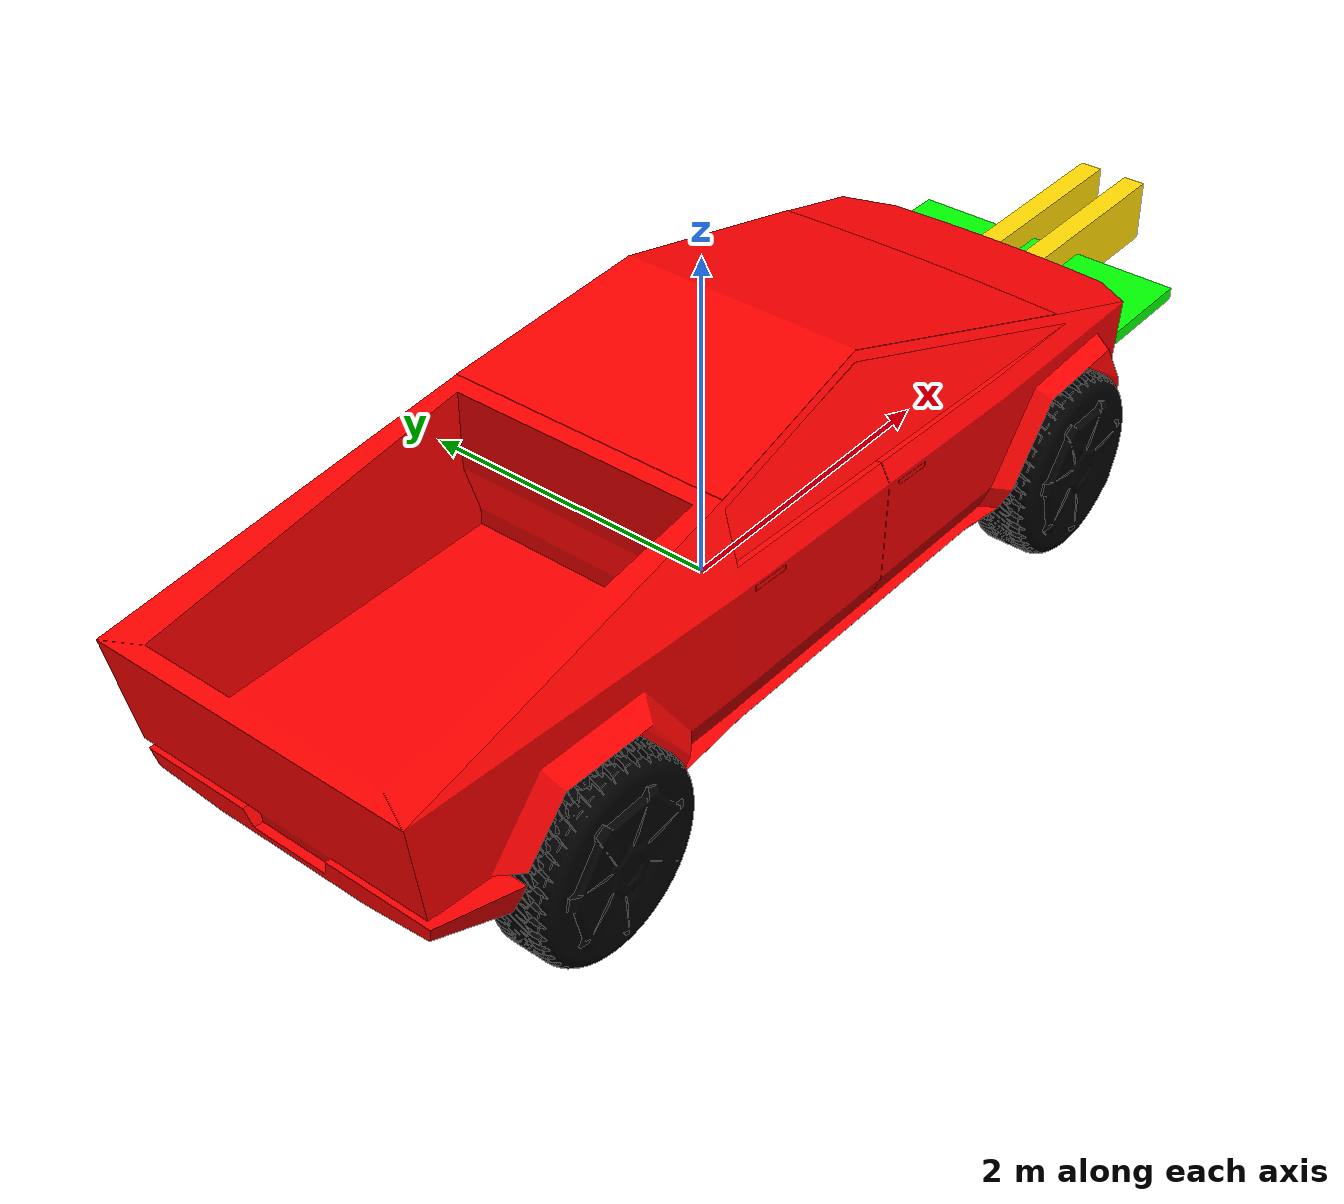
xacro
<?xml version="1.0"?>
<robot name="robot" xmlns:xacro="http://ros.org/wiki/xacro">

  <!-- Overall forklift scale (meshes, wheels, nose). Gripper Z stays at box height. -->
  <xacro:property name="S" value="1.35"/>
  <xacro:property name="WR" value="${0.4175 * S}"/>

   <link name="body">
    <inertial>
      <!-- Heavy enough not to yeet; light enough to accelerate -->
      <mass value="90"/>
      <inertia ixx="35" ixy="0" ixz="0" iyy="70" iyz="0" izz="80" />
    </inertial>
    <visual>
      <origin xyz="0 0 0" rpy="0 0 0" />
      <geometry>
        <mesh filename="file://$(find TeleARM)/meshes/body.STL" scale="${S} ${S} ${S}"/>
      </geometry>
      <material name="red">
        <color rgba="1 0 0 1"/> <!-- Black color -->
      </material>
    </visual>
  </link>

  <link name="window">
    <inertial>
      <mass value="1"/>
      <inertia ixx=".1" ixy="0" ixz="0" iyy=".1" iyz="0" izz=".1" />
    </inertial>
    <visual>
      <origin xyz="0 0 0" rpy="0 0 0" />
      <geometry>
        <mesh filename="file://$(find TeleARM)/meshes/window.STL" scale="${S} ${S} ${S}"/>
      </geometry>
      <material name="red">
        <color rgba="1 0 0 1"/> <!-- Black color -->
      </material>
    </visual>
  </link>
  <!-- Front Left -->
  <link name="front_left_wheel">
    <inertial>
      <mass value="10"/>
      <inertia ixx="0.6" ixy="0" ixz="0" iyy="0.6" iyz="0" izz="1.0" />
    </inertial>
    <collision>
      <origin xyz="0 0 ${0.16 * S}" rpy="0 0 0"/>
      <geometry>
        <cylinder radius="${WR}" length="${0.16 * S}"/>
      </geometry>
    </collision>
    <visual>
      <origin xyz="0 0 0" rpy="0 0 0" />
      <geometry>
        <mesh filename="file://$(find TeleARM)/meshes/wheel.STL" scale="${S} ${S} ${S}"/>
      </geometry>
      <material name="black">
        <color rgba="0 0 0 1"/> <!-- Black color -->
      </material>
    </visual>
  </link>
  <!-- Front Right -->
  <link name="front_right_wheel">
    <inertial>
      <mass value="10"/>
      <inertia ixx="0.6" ixy="0" ixz="0" iyy="0.6" iyz="0" izz="1.0" />
    </inertial>
    <collision>
      <origin xyz="0 0 ${0.16 * S}" rpy="0 0 0"/>
      <geometry>
        <cylinder radius="${WR}" length="${0.16 * S}"/>
      </geometry>
    </collision>
    <visual>
      <origin xyz="0 0 0" rpy="0 0 0" />
      <geometry>
        <mesh filename="file://$(find TeleARM)/meshes/wheel.STL" scale="${S} ${S} ${S}"/>
      </geometry>
      <material name="black">
        <color rgba="0 0 0 1"/> <!-- Black color -->
      </material>
    </visual>
  </link>
  <!-- Back Left -->
  <link name="back_left_wheel">
    <inertial>
      <mass value="10"/>
      <inertia ixx="0.6" ixy="0" ixz="0" iyy="0.6" iyz="0" izz="1.0" />
    </inertial>
    <collision>
      <origin xyz="0 0 ${0.16 * S}" rpy="0 0 0"/>
      <geometry>
        <cylinder radius="${WR}" length="${0.16 * S}"/>
      </geometry>
    </collision>
    <visual>
      <origin xyz="0 0 0" rpy="0 0 0" />
      <geometry>
        <mesh filename="file://$(find TeleARM)/meshes/wheel.STL" scale="${S} ${S} ${S}"/>
      </geometry>
      <material name="black">
        <color rgba="0 0 0 1"/> <!-- Black color -->
      </material>
    </visual>
  </link>
  <!-- Back Right -->
  <link name="back_right_wheel">
    <inertial>
      <mass value="10"/>
      <inertia ixx="0.6" ixy="0" ixz="0" iyy="0.6" iyz="0" izz="1.0" />
    </inertial>
    <collision>
      <origin xyz="0 0 ${0.16 * S}" rpy="0 0 0"/>
      <geometry>
        <cylinder radius="${WR}" length="${0.16 * S}"/>
      </geometry>
    </collision>
    <visual>
      <origin xyz="0 0 0" rpy="0 0 0" />
      <geometry>
        <mesh filename="file://$(find TeleARM)/meshes/wheel.STL" scale="${S} ${S} ${S}"/>
      </geometry>
      <material name="black">
        <color rgba="0 0 0 1"/> <!-- Black color -->
      </material>
    </visual>
  </link>
  <!-- Chunkier claw — open/close travel is obvious -->
  <link name="gripper_base">
    <inertial>
      <mass value="0.5"/>
      <inertia ixx="0.02" ixy="0" ixz="0" iyy="0.02" iyz="0" izz="0.02"/>
    </inertial>
    <visual>
      <origin xyz="0 0 0" rpy="0 0 0"/>
      <geometry>
        <box size="0.7 1.8 0.08"/>
      </geometry>
      <material name="green">
        <color rgba="0 1 0 1"/>
      </material>
    </visual>
    <!-- no collision on base — only fingers touch boxes (avoids yeeting them) -->
  </link>

  <link name="left_finger">
    <inertial>
      <mass value="0.2"/>
      <inertia ixx="0.002" ixy="0" ixz="0" iyy="0.002" iyz="0" izz="0.002"/>
    </inertial>
    <visual>
      <origin xyz="0.45 0 0" rpy="0 0 0"/>
      <geometry>
        <box size="1.4 0.14 0.40"/>
      </geometry>
      <material name="yellow">
        <color rgba="1 0.85 0 1"/>
      </material>
    </visual>
    <collision>
      <origin xyz="0.45 0 0" rpy="0 0 0"/>
      <geometry>
        <box size="1.4 0.14 0.40"/>
      </geometry>
    </collision>
  </link>

  <link name="right_finger">
    <inertial>
      <mass value="0.2"/>
      <inertia ixx="0.002" ixy="0" ixz="0" iyy="0.002" iyz="0" izz="0.002"/>
    </inertial>
    <visual>
      <origin xyz="0.45 0 0" rpy="0 0 0"/>
      <geometry>
        <box size="1.4 0.14 0.40"/>
      </geometry>
      <material name="yellow">
        <color rgba="1 0.85 0 1"/>
      </material>
    </visual>
    <collision>
      <origin xyz="0.45 0 0" rpy="0 0 0"/>
      <geometry>
        <box size="1.4 0.14 0.40"/>
      </geometry>
    </collision>
  </link>

  <joint name="body_to_window" type="fixed">
    <origin xyz="0 0 0"/>
    <parent link="body"/>
    <child link="window"/>
  </joint>

  <joint name="body_to_front_left_wheel" type="continuous">
    <origin xyz="${1.505428 * S} ${0.573211 * S} ${0.055848 * S}" rpy="${-pi/2} 0 0"/>
    <parent link="body"/>
    <child link="front_left_wheel"/>
    <axis xyz="0 0 1"/>
  </joint>

  <joint name="body_to_front_right_wheel" type="continuous">
    <origin xyz="${1.505428 * S} ${-0.573211 * S} ${0.055848 * S}" rpy="${pi/2} 0 0"/>
    <parent link="body"/>
    <child link="front_right_wheel"/>
    <axis xyz="0 0 -1"/>
  </joint>

  <joint name="body_to_back_left_wheel" type="continuous">
    <origin xyz="${-1.505428 * S} ${0.573211 * S} ${0.055848 * S}" rpy="${-pi/2} 0 0"/>
    <parent link="body"/>
    <child link="back_left_wheel"/>
    <axis xyz="0 0 1"/>
  </joint>

  <joint name="body_to_back_right_wheel" type="continuous">
    <origin xyz="${-1.505428 * S} ${-0.573211 * S} ${0.055848 * S}" rpy="${pi/2} 0 0"/>
    <parent link="body"/>
    <child link="back_right_wheel"/>
    <axis xyz="0 0 -1"/>
  </joint>

  <!-- Nose farther out (scaled); Z matches ~0.90 m box centers -->
  <joint name="body_to_gripper_base" type="fixed">
    <origin xyz="${2.35 * S} 0 0.45" rpy="0 0 0"/>
    <parent link="body"/>
    <child link="gripper_base"/>
  </joint>

  <joint name="gripper_left" type="prismatic">
    <origin xyz="0 0.16 0" rpy="0 0 0"/>
    <parent link="gripper_base"/>
    <child link="left_finger"/>
    <axis xyz="0 1 0"/>
    <!-- wide open vs tight close so claw motion is obvious -->
    <limit effort="120" velocity="0.5" lower="0.0" upper="0.80"/>
  </joint>

  <joint name="gripper_right" type="prismatic">
    <origin xyz="0 -0.16 0" rpy="0 0 0"/>
    <parent link="gripper_base"/>
    <child link="right_finger"/>
    <axis xyz="0 -1 0"/>
    <limit effort="120" velocity="0.5" lower="0.0" upper="0.80"/>
  </joint>

  <link name="camera_link"/>
  <joint name="body_to_camera_link" type="fixed">
    <origin xyz="${2.15 * S} 0 0.55" rpy="0 -0.55 0"/>
    <parent link="body"/>
    <child link="camera_link"/>
  </joint>

  <!-- Keep a lidar for /scan (avoidance). Camera is Image-only. -->
  <link name="lidar_link"/>
  <joint name="body_to_lidar_link" type="fixed">
    <origin xyz="${2.1 * S} 0 ${0.7 * S}" rpy="0 0 0"/>
    <parent link="body"/>
    <child link="lidar_link"/>
  </joint>

  <ros2_control name="GazeboSystem" type="system">
    <hardware>
      <plugin>gazebo_ros2_control/GazeboSystem</plugin>
    </hardware>
    <joint name="body_to_back_left_wheel">
      <command_interface name="velocity">
        <param name="min">-1</param>
        <param name="max">1</param>
      </command_interface>
      <state_interface name="position"/>
      <state_interface name="velocity"/>
    </joint>
    <joint name="body_to_back_right_wheel">
      <command_interface name="velocity">
        <param name="min">-1</param>
        <param name="max">1</param>
      </command_interface>
      <state_interface name="position"/>
      <state_interface name="velocity"/>
    </joint>
    <joint name="gripper_left">
      <command_interface name="position">
        <param name="min">0.0</param>
        <param name="max">0.80</param>
      </command_interface>
      <state_interface name="position"/>
      <state_interface name="velocity"/>
    </joint>
    <joint name="gripper_right">
      <command_interface name="position">
        <param name="min">0.0</param>
        <param name="max">0.80</param>
      </command_interface>
      <state_interface name="position"/>
      <state_interface name="velocity"/>
    </joint>
  </ros2_control>

  <gazebo>
    <!-- Joint state publisher -->
    <plugin filename="libgazebo_ros2_control.so" name="gazebo_ros2_control">
      <parameters>$(find TeleARM)/config/diff_drive_controller.yaml</parameters>
    </plugin>
  </gazebo>

  <gazebo reference="body">
    <material>Gazebo/Red</material>
    <selfCollide>false</selfCollide>
  </gazebo>
  <gazebo reference="window">
    <material>Gazebo/Black</material>
  </gazebo>
  <!-- Front wheels are undriven — zero friction so they don't drag the car -->
  <gazebo reference="front_left_wheel">
    <material>Gazebo/Black</material>
    <mu1>0.0</mu1>
    <mu2>0.0</mu2>
  </gazebo>
  <gazebo reference="front_right_wheel">
    <material>Gazebo/Black</material>
    <mu1>0.0</mu1>
    <mu2>0.0</mu2>
  </gazebo>
  <gazebo reference="back_left_wheel">
    <material>Gazebo/Black</material>
    <mu1>1.2</mu1>
    <mu2>1.2</mu2>
  </gazebo>
  <gazebo reference="back_right_wheel">
    <material>Gazebo/Black</material>
    <mu1>1.2</mu1>
    <mu2>1.2</mu2>
  </gazebo>

  <!-- Grip friction — keep kp moderate so boxes don't get yeeted -->
  <gazebo reference="left_finger">
    <mu1>2.5</mu1>
    <mu2>2.5</mu2>
    <kp>1e4</kp>
    <kd>10.0</kd>
  </gazebo>
  <gazebo reference="right_finger">
    <mu1>2.5</mu1>
    <mu2>2.5</mu2>
    <kp>1e4</kp>
    <kd>10.0</kd>
  </gazebo>

  <gazebo reference="camera_link">
    <!-- RGB camera: publishes Image, NOT LaserScan.
         Note: may crash Gazebo Classic on WSL (needs graphics Scene). -->
    <sensor type="camera" name="rgb_camera">
      <pose>0 0 0 0 0 0</pose>
      <visualize>false</visualize>
      <update_rate>10</update_rate>
      <camera>
        <horizontal_fov>1.3962634</horizontal_fov>
        <image>
          <width>320</width>
          <height>240</height>
          <format>R8G8B8</format>
        </image>
        <clip>
          <near>0.1</near>
          <far>20.0</far>
        </clip>
      </camera>
      <plugin name="rgb_camera_controller" filename="libgazebo_ros_camera.so">
        <ros>
          <remapping>rgb_camera/image_raw:=/camera/image_raw</remapping>
          <remapping>rgb_camera/camera_info:=/camera/camera_info</remapping>
        </ros>
        <camera_name>rgb_camera</camera_name>
        <frame_name>camera_link</frame_name>
      </plugin>
    </sensor>
  </gazebo>

  <gazebo reference="lidar_link">
    <sensor type="ray" name="lidar_sensor">
      <pose>0 0 0 0 0 0</pose>
      <visualize>false</visualize>
      <update_rate>10</update_rate>
      <ray>
        <scan>
          <horizontal>
            <samples>720</samples>
            <resolution>1</resolution>
            <min_angle>-3.14159</min_angle>
            <max_angle>3.14159</max_angle>
          </horizontal>
        </scan>
        <range>
          <min>0.12</min>
          <max>12.0</max>
          <resolution>0.01</resolution>
        </range>
      </ray>
      <plugin name="lidar" filename="libgazebo_ros_ray_sensor.so">
        <output_type>sensor_msgs/LaserScan</output_type>
        <frame_name>lidar_link</frame_name>
        <ros>
          <remapping>~/out:=scan</remapping>
        </ros>
      </plugin>
    </sensor>
  </gazebo>

</robot>
